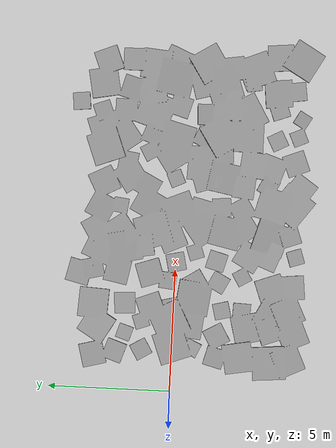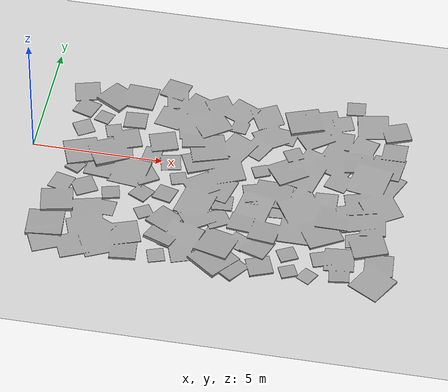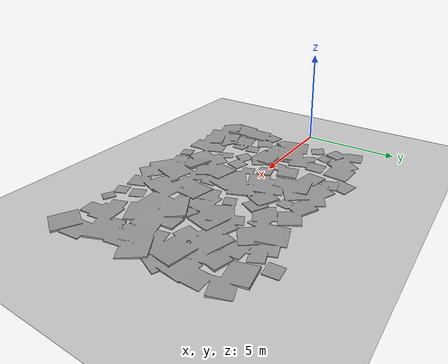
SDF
<?xml version="1.0" ?>
<sdf version="1.5">
    <world name="default">

        <physics type="ode">
        <max_step_size>0.001</max_step_size>
        <real_time_factor>1</real_time_factor>
        <real_time_update_rate>1000</real_time_update_rate>
        <gravity>0 0 -9.81</gravity>
            <ode>
                <solver>
                <type>quick</type>
                <iters>50</iters>
                <sor>1.3</sor>
                </solver>
                <constraints>
                <cfm>0.0</cfm>
                <erp>0.2</erp>
                <contact_max_correcting_vel>10.0</contact_max_correcting_vel>
                <contact_surface_layer>0.001</contact_surface_layer>
                </constraints>
            </ode>
        </physics>

        <scene>
        <shadows>false</shadows>
        </scene>
        <!-- A global light source -->
        <include>
            <uri>model://sun</uri>
        </include>
        <!-- A ground plane -->
        <include>
            <uri>model://ground_plane</uri>
        </include>
        <!-- environment blocks, obstacles or stairs -->
        <model name="static_environment">

        <static>true</static>
        <link name="boxes">
        <visual name="boxes_visual">
            <pose frame=''>0 0 0 0 0 0</pose>
            <geometry>
                <mesh><uri>model://boxes.dae</uri></mesh>
            </geometry>
            <material>
            <script>
                <uri>file://media/materials/scripts/gazebo.material</uri>
                <name>Gazebo/Grey</name>
            </script>
            </material>
        </visual>
        <collision name="boxes_collision">
            <pose frame=''>0 0 0 0 0 0</pose>
            <geometry>
                <mesh><uri>model://boxes.dae</uri></mesh>
            </geometry>
        </collision></link>
        </model>

    </world>
</sdf>
